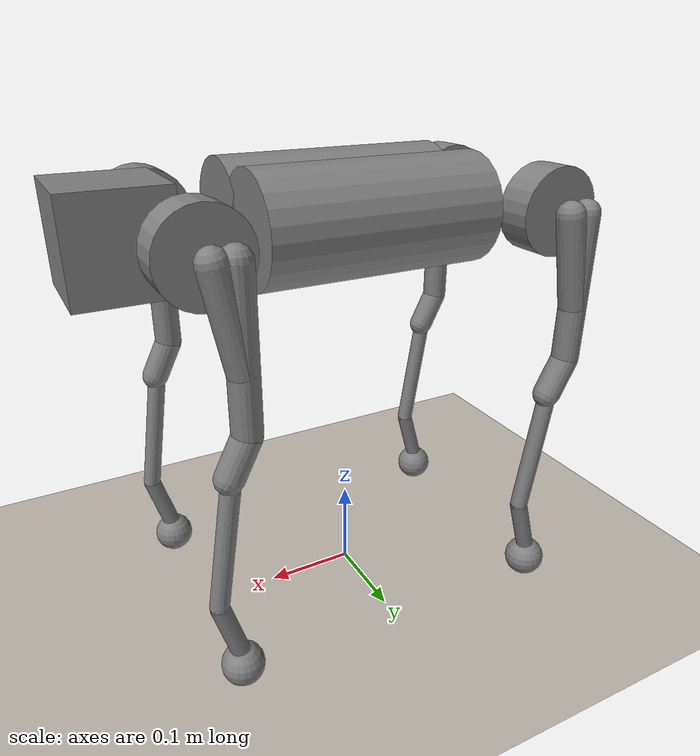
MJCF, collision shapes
<mujoco model="go1 feetonly flat terrain scene">
  <include file="go1_mjx_fullcollisions.xml"/>
  <include file="../common/materials.xml"/>
  <statistic center="0 0 0.1" extent="0.8" meansize="0.04"/>

  <visual>
    <headlight diffuse="0.6 0.6 0.6" ambient="0.3 0.3 0.3" specular="0 0 0"/>
    <rgba haze="0.15 0.25 0.35 1"/>
    <global azimuth="120" elevation="-20"/>
    <map force="0.01"/>
    <scale forcewidth="0.3" contactwidth="0.5" contactheight="0.2"/>
    <quality shadowsize="2048"/>
  </visual>

  <asset>
    <texture type="skybox" builtin="gradient" rgb1="0.4314 0.5294 0.6431" rgb2="0 0 0" width="512" height="512"/>
  </asset>

  <worldbody>
      <light pos="0 0 1.5" dir="0 0 -1" directional="true"/>
      <geom name="floor" size="0 0 0.01" type="plane" material="motphys-ground" contype="1" conaffinity="0" priority="1"
        friction="0.6" condim="3"/>
  </worldbody>

  <keyframe>
    <key name="home" qpos="
    0 0 0.278
    1 0 0 0
    0.1 0.9 -1.8
    -0.1 0.9 -1.8
    0.1 0.9 -1.8
    -0.1 0.9 -1.8"
      ctrl="0.1 0.9 -1.8 -0.1 0.9 -1.8 0.1 0.9 -1.8 -0.1 0.9 -1.8"/>
    <key name="home_higher" qpos="0 0 0.31 1 0 0 0 0 0.82 -1.63 0 0.82 -1.63 0 0.82 -1.63 0 0.82 -1.63"
      ctrl="0 0.82 -1.63 0 0.82 -1.63 0 0.82 -1.63 0 0.82 -1.63"/>
    <key
    name="footstand"
    qpos='
    0 0 0.54
    0.8 0 -0.8 0
    0 0.82 -1.6 0 0.82 -1.68 0 1.82 -1.16 0.0 1.82 -1.16'
    ctrl='0 0.82 -1.6 0 0.82 -1.68 0 1.82 -1.16 0.0 1.82 -1.16'/>
    <key name="handstand"
      qpos="0 0 0.54
      0.8 0 0.8 0
      0 -0.686 -1.16
      0 -0.686 -1.16
      0 1.7 -1.853
      0 1.7 -1.853"
      ctrl="0 -0.686 -1.16 0 -0.686 -1.16 0 1.7 -1.853 0 1.7 -1.853"/>
    <key name="pre_recovery"
      qpos="-0.0318481 -0.000215369 0.0579031 1 -2.70738e-05 6.06169e-05 0.000231261 -0.352275 1.18554 -2.80738 0.360892 1.1806 -2.80281 -0.381197 1.16812 -2.79123 0.391054 1.1622 -2.78576"
      ctrl="-0.352275 1.18554 -2.80738 0.360892 1.1806 -2.80281 -0.381197 1.16812 -2.79123 0.391054 1.1622 -2.78576"/>
  </keyframe>
</mujoco>

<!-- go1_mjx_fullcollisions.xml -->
<mujoco model="go1">
  <compiler angle="radian" autolimits="true"/>

  <option timestep="0.004" integrator="Euler" iterations="50">
    <flag eulerdamp="disable"/>
  </option>

  <custom>
    <numeric data="30" name="max_contact_points"/>
    <numeric data="12" name="max_geom_pairs"/>
  </custom>

  <default>
    <default class="go1">
      <geom condim="1"/>
      <joint axis="0 1 0" armature="0.005" damping="0.5"/>
      <position forcerange="-23.7 23.7" inheritrange="1" kp="35"/>
      <default class="abduction">
        <joint axis="1 0 0" range="-0.863 0.863" frictionloss="0.3"/>
      </default>
      <default class="hip">
        <joint range="-0.686 4.501" frictionloss="0.3"/>
      </default>
      <default class="knee">
        <joint range="-2.818 -0.888" frictionloss="1.0"/>
        <position forcerange="-35.55 35.55"/>
      </default>
      <default class="visual">
        <geom type="mesh" contype="0" conaffinity="0" group="2" material="dark"/>
      </default>
      <default class="collision">
        <geom group="3" type="capsule"/>
        <default class="hip_left1">
          <geom size="0.046 0.02" pos="0 0.045 0" quat="1 1 0 0" type="cylinder"/>
        </default>
        <default class="hip_left2">
          <geom size="0.031 0.02" pos="0 0.065 0" quat="1 1 0 0" type="cylinder"/>
        </default>
        <default class="hip_left3">
          <geom size="0.046 0.02" quat="1 1 0 0" type="cylinder"/>
        </default>
        <default class="hip_right1">
          <geom size="0.046 0.02" pos="0 -0.045 0" quat="1 1 0 0" type="cylinder"/>
        </default>
        <default class="hip_right2">
          <geom size="0.031 0.02" pos="0 -0.065 0" quat="1 1 0 0" type="cylinder"/>
        </default>
        <default class="hip_right3">
          <geom size="0.046 0.02" quat="1 1 0 0" type="cylinder"/>
        </default>
        <default class="thigh1">
          <geom size="0.015" fromto="-0.02 0 0 -0.02 0 -0.16"/>
        </default>
        <default class="thigh2">
          <geom size="0.015" fromto="0 0 0 -0.02 0 -0.1"/>
        </default>
        <default class="thigh3">
          <geom size="0.015" fromto="-0.02 0 -0.16 0 0 -0.2"/>
        </default>
        <default class="calf1">
          <geom size="0.01" fromto="0 0 0 0.02 0 -0.13"/>
        </default>
        <default class="calf2">
          <geom size="0.01" fromto="0.02 0 -0.13 0 0 -0.2"/>
        </default>
        <default class="foot">
          <geom type="sphere" size="0.023" pos="0 0 -0.213" solimp="0.9 .99 0.001" priority="10" condim="3"/>
        </default>
      </default>
    </default>
  </default>

  <asset>
    <material name="dark" rgba="0.2 0.2 0.2 1"/>
    <mesh class="go1" file="../go1/assets/trunk.stl"/>
    <mesh class="go1" file="../go1/assets/hip.stl"/>
    <mesh class="go1" file="../go1/assets/thigh_mirror.stl"/>
    <mesh class="go1" file="../go1/assets/calf.stl"/>
    <mesh class="go1" file="../go1/assets/thigh.stl"/>
  </asset>

  <worldbody>
    <light name="spotlight" mode="targetbodycom" target="trunk" pos="3 0 4"/>
    <body name="trunk" pos="0 0 0.445" childclass="go1">
      <camera name="track" pos="0.846 -1.3 0.316" xyaxes="0.866 0.500 0.000 -0.171 0.296 0.940" mode="track"/>
      <camera name="top" pos="-1 0 1" xyaxes="0 -1 0 0.7 0 0.7" mode="track"/>
      <camera name="side" pos="0 -2 1" xyaxes="1 0 0 0 1 2" mode="track"/>
      <camera name="back" pos="-2.4 0 0.8" target="trunk" mode="targetbody"/>
      <site name="head" pos="0.3 0 0" rgba="1 0 0 1" size="0.02" group="5"/>
      <inertial pos="0.0223 0.002 -0.0005" quat="-0.00342088 0.705204 0.000106698 0.708996" mass="5.204"
        diaginertia="0.0716565 0.0630105 0.0168101"/>
      <freejoint/>
      <geom class="visual" mesh="trunk"/>
      <geom class="collision" quat="1 0 0 0" pos="0.24 0 0" size="0.05 0.05 0.05" type="box"/>
      <geom class="collision" quat="1 0 1 0" pos="0 -0.04 0" size="0.058 0.125" type="cylinder"/>
      <geom class="collision" quat="1 0 1 0" pos="0 +0.04 0" size="0.058 0.125" type="cylinder"/>
      <site name="imu" pos="-0.01592 -0.06659 -0.00617" group="5"/>
      <body name="FR_hip" pos="0.1881 -0.04675 0">
        <inertial pos="-0.0049166 0.00762615 -8.865e-05" quat="0.507341 0.514169 0.495027 0.482891" mass="0.68"
          diaginertia="0.000734064 0.000468438 0.000398719"/>
        <joint class="abduction" name="FR_hip_joint"/>
        <geom class="visual" mesh="hip" quat="1 0 0 0"/>
        <geom name="fr_hip" class="hip_right1"/>
        <body name="FR_thigh" pos="0 -0.08 0">
          <inertial pos="-0.00304722 0.019315 -0.0305004" quat="0.65243 -0.0272313 0.0775126 0.753383" mass="1.009"
            diaginertia="0.00478717 0.00460903 0.000709268"/>
          <joint class="hip" name="FR_thigh_joint"/>
          <geom class="visual" mesh="thigh_mirror"/>
          <geom name="fr_thigh1" class="thigh1"/>
          <geom name="fr_thigh2" class="thigh2"/>
          <geom name="fr_thigh3" class="thigh3"/>
          <body name="FR_calf" pos="0 0 -0.213">
            <inertial pos="0.00429862 0.000976676 -0.146197" quat="0.691246 0.00357467 0.00511118 0.722592"
              mass="0.195862" diaginertia="0.00149767 0.00148468 3.58427e-05"/>
            <joint class="knee" name="FR_calf_joint"/>
            <geom class="visual" mesh="calf"/>
            <geom name="fr_calf1" class="calf1"/>
            <geom name="fr_calf2" class="calf2"/>
            <geom name="FR" class="foot"/>
            <site name="FR" pos="0 0 -0.213" type="sphere" size="0.023" group="5"/>
          </body>
        </body>
      </body>
      <body name="FL_hip" pos="0.1881 0.04675 0">
        <inertial pos="-0.0049166 -0.00762615 -8.865e-05" quat="0.482891 0.495027 0.514169 0.507341" mass="0.68"
          diaginertia="0.000734064 0.000468438 0.000398719"/>
        <joint class="abduction" name="FL_hip_joint"/>
        <geom class="visual" mesh="hip"/>
        <geom name="fl_hip" class="hip_left1"/>
        <body name="FL_thigh" pos="0 0.08 0">
          <inertial pos="-0.00304722 -0.019315 -0.0305004" quat="0.753383 0.0775126 -0.0272313 0.65243" mass="1.009"
            diaginertia="0.00478717 0.00460903 0.000709268"/>
          <joint class="hip" name="FL_thigh_joint"/>
          <geom class="visual" mesh="thigh"/>
          <geom name="fl_thigh1" class="thigh1"/>
          <geom name="fl_thigh2" class="thigh2"/>
          <geom name="fl_thigh3" class="thigh3"/>
          <body name="FL_calf" pos="0 0 -0.213">
            <inertial pos="0.00429862 0.000976676 -0.146197" quat="0.691246 0.00357467 0.00511118 0.722592"
              mass="0.195862" diaginertia="0.00149767 0.00148468 3.58427e-05"/>
            <joint class="knee" name="FL_calf_joint"/>
            <geom class="visual" mesh="calf"/>
            <geom name="fl_calf1" class="calf1"/>
            <geom name="fl_calf2" class="calf2"/>
            <geom name="FL" class="foot"/>
            <site name="FL" pos="0 0 -0.213" type="sphere" size="0.023" group="5"/>
          </body>
        </body>
      </body>
      <body name="RR_hip" pos="-0.1881 -0.04675 0">
        <inertial pos="0.0049166 0.00762615 -8.865e-05" quat="0.495027 0.482891 0.507341 0.514169" mass="0.68"
          diaginertia="0.000734064 0.000468438 0.000398719"/>
        <joint class="abduction" name="RR_hip_joint"/>
        <geom class="visual" quat="0 0 0 -1" mesh="hip"/>
        <geom name="rr_hip" class="hip_right1"/>
        <body name="RR_thigh" pos="0 -0.08 0">
          <inertial pos="-0.00304722 0.019315 -0.0305004" quat="0.65243 -0.0272313 0.0775126 0.753383" mass="1.009"
            diaginertia="0.00478717 0.00460903 0.000709268"/>
          <joint class="hip" name="RR_thigh_joint"/>
          <geom class="visual" mesh="thigh_mirror"/>
          <geom name="rr_thigh1" class="thigh1"/>
          <geom name="rr_thigh2" class="thigh2"/>
          <geom name="rr_thigh3" class="thigh3"/>
          <body name="RR_calf" pos="0 0 -0.213">
            <inertial pos="0.00429862 0.000976676 -0.146197" quat="0.691246 0.00357467 0.00511118 0.722592"
              mass="0.195862" diaginertia="0.00149767 0.00148468 3.58427e-05"/>
            <joint class="knee" name="RR_calf_joint"/>
            <geom class="visual" mesh="calf"/>
            <geom name="rr_calf1" class="calf1"/>
            <geom name="rr_calf2" class="calf2"/>
            <geom name="RR" class="foot"/>
            <site name="RR" pos="0 0 -0.213" type="sphere" size="0.023" group="5"/>
          </body>
        </body>
      </body>
      <body name="RL_hip" pos="-0.1881 0.04675 0">
        <inertial pos="0.0049166 -0.00762615 -8.865e-05" quat="0.514169 0.507341 0.482891 0.495027" mass="0.68"
          diaginertia="0.000734064 0.000468438 0.000398719"/>
        <joint class="abduction" name="RL_hip_joint"/>
        <geom class="visual" quat="0 0 1 0" mesh="hip"/>
        <geom name="rl_hip" class="hip_left1"/>
        <body name="RL_thigh" pos="0 0.08 0">
          <inertial pos="-0.00304722 -0.019315 -0.0305004" quat="0.753383 0.0775126 -0.0272313 0.65243" mass="1.009"
            diaginertia="0.00478717 0.00460903 0.000709268"/>
          <joint class="hip" name="RL_thigh_joint"/>
          <geom class="visual" mesh="thigh"/>
          <geom name="rl_thigh1" class="thigh1"/>
          <geom name="rl_thigh2" class="thigh2"/>
          <geom name="rl_thigh3" class="thigh3"/>
          <body name="RL_calf" pos="0 0 -0.213">
            <inertial pos="0.00429862 0.000976676 -0.146197" quat="0.691246 0.00357467 0.00511118 0.722592"
              mass="0.195862" diaginertia="0.00149767 0.00148468 3.58427e-05"/>
            <joint class="knee" name="RL_calf_joint"/>
            <geom class="visual" mesh="calf"/>
            <geom name="rl_calf1" class="calf1"/>
            <geom name="rl_calf2" class="calf2"/>
            <geom name="RL" class="foot"/>
            <site name="RL" pos="0 0 -0.213" type="sphere" size="0.023" group="5"/>
          </body>
        </body>
      </body>
    </body>
  </worldbody>

  <actuator>
    <position class="abduction" name="FR_hip" joint="FR_hip_joint"/>
    <position class="hip" name="FR_thigh" joint="FR_thigh_joint"/>
    <position class="knee" name="FR_calf" joint="FR_calf_joint"/>
    <position class="abduction" name="FL_hip" joint="FL_hip_joint"/>
    <position class="hip" name="FL_thigh" joint="FL_thigh_joint"/>
    <position class="knee" name="FL_calf" joint="FL_calf_joint"/>
    <position class="abduction" name="RR_hip" joint="RR_hip_joint"/>
    <position class="hip" name="RR_thigh" joint="RR_thigh_joint"/>
    <position class="knee" name="RR_calf" joint="RR_calf_joint"/>
    <position class="abduction" name="RL_hip" joint="RL_hip_joint"/>
    <position class="hip" name="RL_thigh" joint="RL_thigh_joint"/>
    <position class="knee" name="RL_calf" joint="RL_calf_joint"/>
  </actuator>

  <sensor>
    <gyro site="imu" name="gyro"/>
    <velocimeter site="imu" name="local_linvel"/>
    <framepos objtype="site" objname="imu" name="position"/>
    <framelinvel objtype="site" objname="imu" name="global_linvel"/>
    <frameangvel objtype="site" objname="imu" name="global_angvel"/>
    <framequat objtype="site" objname="imu" name="orientation"/>
    <framelinvel objtype="site" objname="FR" name="FR_global_linvel"/>
    <framelinvel objtype="site" objname="FL" name="FL_global_linvel"/>
    <framelinvel objtype="site" objname="RR" name="RR_global_linvel"/>
    <framelinvel objtype="site" objname="RL" name="RL_global_linvel"/>
    <framepos objtype="site" objname="FR" name="FR_pos" reftype="site" refname="imu"/>
    <framepos objtype="site" objname="FL" name="FL_pos" reftype="site" refname="imu"/>
    <framepos objtype="site" objname="RR" name="RR_pos" reftype="site" refname="imu"/>
    <framepos objtype="site" objname="RL" name="RL_pos" reftype="site" refname="imu"/>
    <framepos objtype="site" objname="head" name="head_pos"/>
  </sensor>
</mujoco>

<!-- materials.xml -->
<!--
Common textures, colors and materials to be used throughout this suite. Some
materials such as xxx_highlight are activated on occurence of certain events,
for example receiving a positive reward.
-->
<mujoco>
  <asset>
    <texture name="motphys-ground" type="2d" file="motphys-ground.png" />
    <material name="motphys-ground" texture="motphys-ground" texuniform="true"
      texrepeat="0.4 0.4" />
  </asset>
</mujoco>
